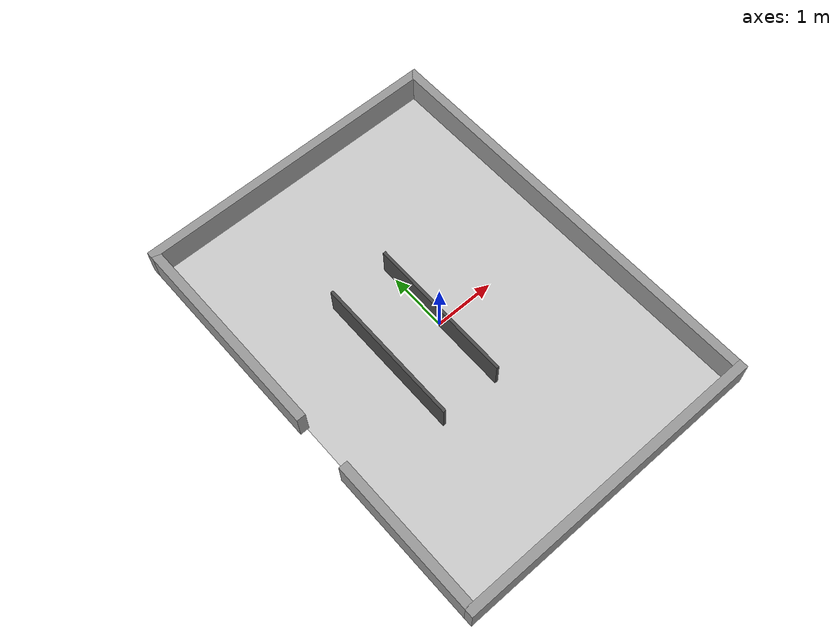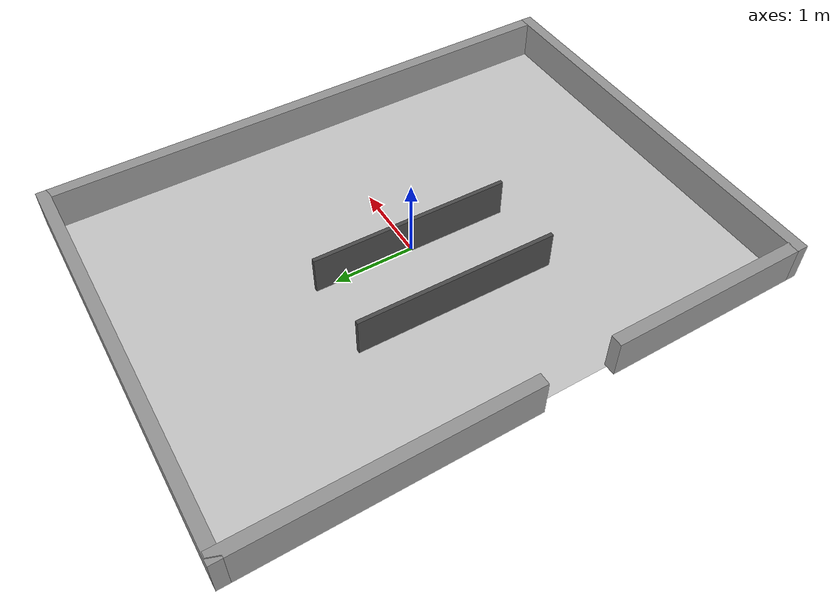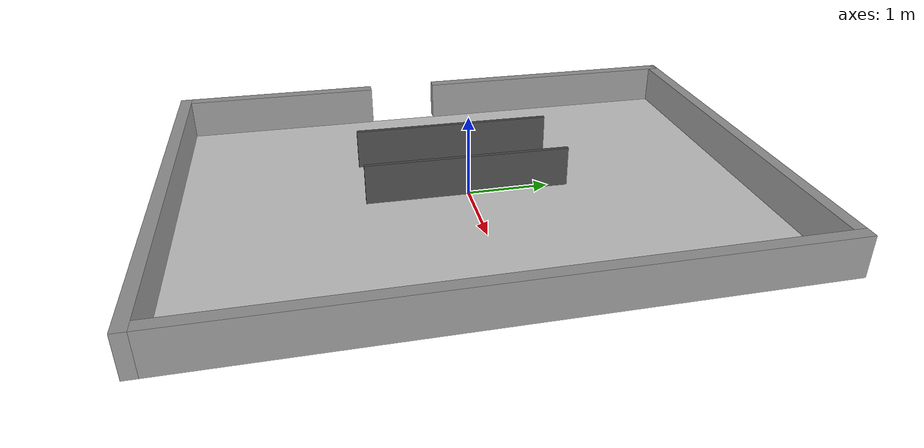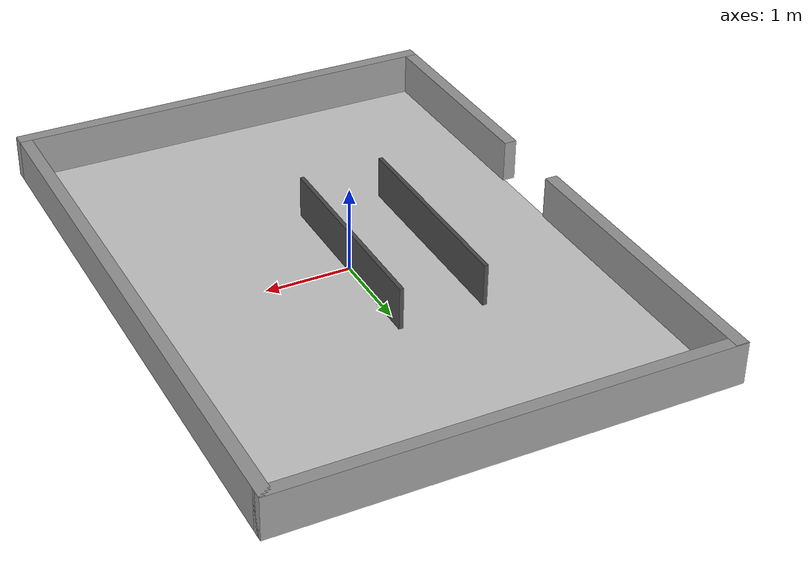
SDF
<sdf version="1.4">
 <world name="tres_paredes">
  <scene><ambient>0.8 0.8 0.8 1</ambient><background>0.7 0.7 0.7 1</background><shadows>true</shadows></scene>
  <include><uri>model://sun</uri><pose>-2.0 2.0 2.0 0 0 0</pose></include>
  <include><uri>model://Floors/tres_paredes</uri><pose>0 0 0 0 0 -1.57</pose></include>
  <include><uri>model://Walls/parede_aberta</uri><pose>0 0 0 0 0 -1.57</pose></include>
  <include><uri>model://Walls/parede_5m5</uri><pose>0.5 0.5 0.25 0 0 0</pose></include>
  <include><uri>model://Walls/parede_5m5_02</uri><pose>-0.5 0.5 0.25 0 0 0</pose></include>
  <include><uri>model://Walls/parede_5m5_03_invisivel</uri><pose>1 -0.5 0.25 0 0 -1.58</pose></include>
  <physics type="ode">
   <real_time_update_rate>1000.0</real_time_update_rate>
   <max_step_size>0.001</max_step_size>
   <real_time_factor>1</real_time_factor>
   <ode>
    <solver>
     <type>quick</type>
     <iters>150</iters>
     <precon_iters>0</precon_iters>
     <sor>1.400000</sor>
     <use_dynamic_moi_rescaling>1</use_dynamic_moi_rescaling>
    </solver>
    <constraints>
     <cfm>0.00001</cfm>
     <erp>0.2</erp>
     <contact_max_correcting_vel>2000.000000</contact_max_correcting_vel>
     <contact_surface_layer>0.01000</contact_surface_layer>
    </constraints>
   </ode>
  </physics>
 </world>
</sdf>

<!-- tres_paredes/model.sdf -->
<sdf version="1.6">
  <model name="piso_sala">
    <static>true</static>
    <link name="course_link">
      <collision name="course_collision">
        <geometry>
          <plane>
            <normal>0 0 1</normal>
            <size>7 5</size>
          </plane>
        </geometry>
        <surface>
          <friction>
            <ode>
              <mu>100</mu>
              <mu2>50</mu2>
            </ode>
          </friction>
        </surface>
      </collision>
      <visual name="course_visual">
        <cast_shadows>false</cast_shadows>
        <geometry>
	        <plane>
            <normal>0 0 1</normal>
            <size>7 5</size>
          </plane>
        </geometry>
	      <material>
          <script>
            <uri>model://Floors/tres_paredes/materials/scripts</uri>
            <uri>model://Floors/tres_paredes/materials/textures</uri>
            <name>pisosala</name>
          </script>
        </material>
      </visual>
    </link>
  </model>
</sdf>

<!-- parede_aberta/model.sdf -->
<sdf version='1.7'>
  <model name='parede_aberta'>
    <pose>-0.08 -0.03 0 0 -0 0</pose>
    <link name='ParedeAberta_0'>
      <collision name='ParedeAberta_0_Collision'>
        <geometry>
          <box>
            <size>5.25 0.15 0.5</size>
          </box>
        </geometry>
        <pose>0 0 0.25 0 -0 0</pose>
      </collision>
      <visual name='ParedeAberta_0_Visual'>
        <pose>0 0 0.25 0 -0 0</pose>
        <geometry>
          <box>
            <size>5.25 0.15 0.5</size>
          </box>
        </geometry>
        <material>
          <script>
            <uri>file://media/materials/scripts/gazebo.material</uri>
            <name>Gazebo/Grey</name>
          </script>
          <ambient>0.466667 0.462745 0.482353 1</ambient>
        </material>
        <meta>
          <layer>0</layer>
        </meta>
      </visual>
      <pose>-3.5 -0 0 0 -0 1.5708</pose>
    </link>
    <link name='ParedeAberta_2'>
      <collision name='ParedeAberta_2_Collision'>
        <geometry>
          <box>
            <size>7 0.15 0.5</size>
          </box>
        </geometry>
        <pose>0 0 0.25 0 -0 0</pose>
      </collision>
      <visual name='ParedeAberta_2_Visual'>
        <pose>0 0 0.25 0 -0 0</pose>
        <geometry>
          <box>
            <size>7 0.15 0.5</size>
          </box>
        </geometry>
        <material>
          <script>
            <uri>file://media/materials/scripts/gazebo.material</uri>
            <name>Gazebo/Grey</name>
          </script>
          <ambient>0.466667 0.462745 0.482353 1</ambient>
        </material>
        <meta>
          <layer>0</layer>
        </meta>
      </visual>
      <pose>-0.075 2.55 0 0 -0 0</pose>
    </link>
    <link name='ParedeAberta_4'>
      <collision name='ParedeAberta_4Collision'>
        <geometry>
          <box>
            <size>5.25 0.15 0.5</size>
          </box>
        </geometry>
        <pose>0 0 0.25 0 -0 0</pose>
      </collision>
      <visual name='ParedeAberta_4Visual'>
        <pose>0 0 0.25 0 -0 0</pose>
        <geometry>
          <box>
            <size>5.25 0.15 0.5</size>
          </box>
        </geometry>
        <material>
          <script>
            <uri>file://media/materials/scripts/gazebo.material</uri>
            <name>Gazebo/Grey</name>
          </script>
          <ambient>0.466667 0.462745 0.482353 1</ambient>
        </material>
        <meta>
          <layer>0</layer>
        </meta>
      </visual>
      <pose>3.5 -0 0 0 -0 1.5708</pose>
    </link>
    <link name='ParedeAberta_6'>
      <pose>-0.065 -2.55 0 0 -0 3.14159</pose>
      <visual name='ParedeAberta_6_Visual_0'>
        <pose>-2.2375 0 0.25 0 -0 0</pose>
        <geometry>
          <box>
            <size>2.525 0.15 0.5</size>
          </box>
        </geometry>
        <material>
          <script>
            <uri>file://media/materials/scripts/gazebo.material</uri>
            <name>Gazebo/Grey</name>
          </script>
          <ambient>0.466667 0.462745 0.482353 1</ambient>
        </material>
        <meta>
          <layer>0</layer>
        </meta>
      </visual>
      <collision name='ParedeAberta_6_Collision_0'>
        <geometry>
          <box>
            <size>2.525 0.15 0.5</size>
          </box>
        </geometry>
        <pose>-2.2375 0 0.25 0 -0 0</pose>
      </collision>
      <visual name='ParedeAberta_6_Visual_1'>
        <pose>1.7125 0 0.25 0 -0 0</pose>
        <geometry>
          <box>
            <size>3.575 0.15 0.5</size>
          </box>
        </geometry>
        <material>
          <script>
            <uri>file://media/materials/scripts/gazebo.material</uri>
            <name>Gazebo/Grey</name>
          </script>
          <ambient>0.466667 0.462745 0.482353 1</ambient>
        </material>
        <meta>
          <layer>0</layer>
        </meta>
      </visual>
      <collision name='ParedeAberta_6_Collision_1'>
        <geometry>
          <box>
            <size>3.575 0.15 0.5</size>
          </box>
        </geometry>
        <pose>1.7125 0 0.25 0 -0 0</pose>
      </collision>
    </link>
    <static>1</static>
  </model>
</sdf>

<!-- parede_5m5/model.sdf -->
<sdf version='1.7'>
  <model name='parede_5m5'>
    <pose>0.711496 -3.02246 0 0 -0 0</pose>
    <link name='Wall_10'>
      <collision name='Wall_10_Collision'>
        <geometry>
          <box>
            <size>2.5 0.05 0.5</size>
          </box>
        </geometry>
        <pose>0 0 0 0 -0 0</pose>
      </collision>
      <visual name='Wall_10_Visual'>
        <pose>0 0 0 0 -0 0</pose>
        <geometry>
          <box>
            <size>2.5 0.05 0.5</size>
          </box>
        </geometry>
        <material>
          <script>
            <uri>file://media/materials/scripts/gazebo.material</uri>
            <name>Gazebo/DarkGrey</name>
          </script>
          <ambient>1 1 1 1</ambient>
        </material>
        <meta>
          <layer>0</layer>
        </meta>
      </visual>
      <pose>-0.5 -0.5 0 0 0 -1.58</pose>
    </link>
    <static>1</static>
  </model>
</sdf>

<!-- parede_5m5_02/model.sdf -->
<sdf version='1.7'>
  <model name='parede_5m5_02'>
    <pose>0.711496 -3.02246 0 0 -0 0</pose>
    <link name='Wall_12'>
      <collision name='Wall_12_Collision'>
        <geometry>
          <box>
            <size>2.5 0.05 0.5</size>
          </box>
        </geometry>
        <pose>0 0 0 0 -0 0</pose>
      </collision>
      <visual name='Wall_12_Visual'>
        <pose>0 0 0 0 -0 0</pose>
        <geometry>
          <box>
            <size>2.5 0.05 0.5</size>
          </box>
        </geometry>
        <material>
          <script>
            <uri>file://media/materials/scripts/gazebo.material</uri>
            <name>Gazebo/DarkGrey</name>
          </script>
          <ambient>1 1 1 1</ambient>
        </material>
        <meta>
          <layer>0</layer>
        </meta>
      </visual>
      <pose>-0.5 -0.5 0 0 0 -1.58</pose>
    </link>
    <static>1</static>
  </model>
</sdf>

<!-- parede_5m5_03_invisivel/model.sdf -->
<sdf version='1.7'>
  <model name='parede_5m5_03'>
    <pose>0.711496 -3.02246 0 0 -0 0</pose>
    <link name='Wall_13'>
      <collision name='Wall_13_Collision'>
        <geometry>
          <box>
            <size>0.6 0.05 0.5</size>
          </box>
        </geometry>
        <pose>0 0 0 0 -0 0</pose>
      </collision>
      <visual name='Wall_13_Visual'>
        <pose>0 0 0 0 -0 0</pose>
        <geometry>
          <box>
            <size>0 0 0</size>
          </box>
        </geometry>
        <material>
          <script>
            <uri>file://media/materials/scripts/gazebo.material</uri>
            <name>Gazebo/DarkGrey</name>
          </script>
          <ambient>1 1 1 1</ambient>
        </material>
        <meta>
          <layer>0</layer>
        </meta>
      </visual>
      <pose>-0.5 -0.5 0 0 0 -1.58</pose>
    </link>
    <static>1</static>
  </model>
</sdf>
